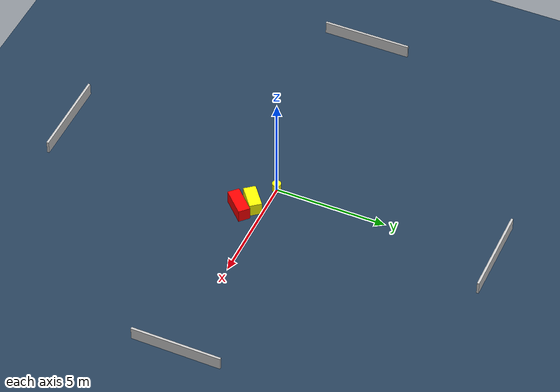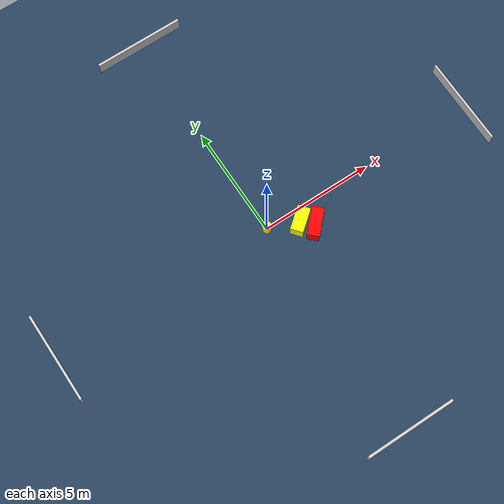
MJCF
<?xml version="1.0" ?>
<mujoco model="generated_environment">
  <option timestep="0.01" integrator="RK4" cone="elliptic"/>
  <default>
    <geom density="1"/>
  </default>
  <asset>
    <texture builtin="gradient" height="3072" name="skybox" rgb1="0.3 0.5 0.7" rgb2="0 0 0" type="skybox" width="512"/>
    <texture builtin="checker" height="300" name="groundplane" rgb1="0.2 0.3 0.4" rgb2="0.1 0.2 0.3" type="2d" width="300"/>
    <material name="groundplane" reflectance="0.2" texrepeat="5 5" texture="groundplane"/>
  </asset>
  <worldbody>
    <light dir="0 0 -1" directional="true" pos="0 0 1.5"/>
    <geom condim="3" friction="0.5 0.005 0.001" material="groundplane" name="floor" pos="0 0 0" size="0 0 0.05" type="plane"/>
    <body name="walls">
      <geom name="wall_1" condim="4" pos="-10.0 0.0 0.3" rgba="0.800000011920929 0.800000011920929 0.800000011920929 1.0" size="0.05 2.0 0.3" type="box"/>
      <geom name="wall_2" condim="4" pos="10.0 0.0 0.3" rgba="0.800000011920929 0.800000011920929 0.800000011920929 1.0" size="0.05 2.0 0.3" type="box"/>
      <geom name="wall_3" condim="4" pos="0.0 -10.0 0.3" rgba="0.800000011920929 0.800000011920929 0.800000011920929 1.0" size="2.0 0.05 0.3" type="box"/>
      <geom name="wall_4" condim="4" pos="0.0 10.0 0.3" rgba="0.800000011920929 0.800000011920929 0.800000011920929 1.0" size="2.0 0.05 0.3" type="box"/>
    </body>
    <body name="robot">
      <joint name="joint_x" type="slide" pos="0 0 0" axis="1 0 0"/>
      <joint name="joint_y" type="slide" pos="0 0 0" axis="0 1 0"/>
      <geom name="robot" type="cylinder" pos="0.0 0.0 0.2" size="0.2 0.2 0.0" mass="5.0" friction="1.0 0.005 0.0001" condim="4" rgba="1.0 1.0 0.0 1.0"/>
    </body>
    <body name="obstacle_1_movable">
      <geom name="obstacle_1_movable" condim="4" pos="1.273483790627544 -0.5568889133658842 0.3" euler="0 0 218.7524524293412" friction="0.0 0.005 0.001" rgba="1.0 1.0 0.0 1.0" size="0.5474073504903487 0.2761091106574175 0.3" type="box" mass="0.1"/>
      <joint type="free"/>
    </body>
    <body name="obstacle_2_static">
      <geom name="obstacle_2_static" condim="4" pos="1.734777336111634 -0.9903527206759157 0.3" euler="0 0 316.1481701220168" friction="0.0 0.005 0.001" rgba="1.0 0.0 0.0 1.0" size="0.2670846920265188 0.6351312151205832 0.3" type="box"/>
    </body>
  </worldbody>
  <actuator>
    <motor name="actuator_x" joint="joint_x" gear="1" ctrlrange="-1 1"/>
    <motor name="actuator_y" joint="joint_y" gear="1" ctrlrange="-1 1"/>
  </actuator>
</mujoco>
